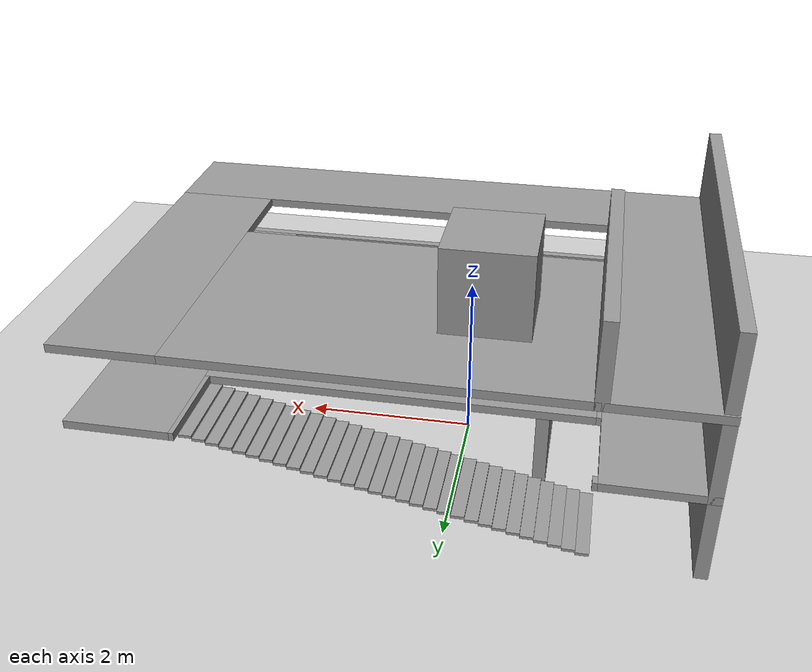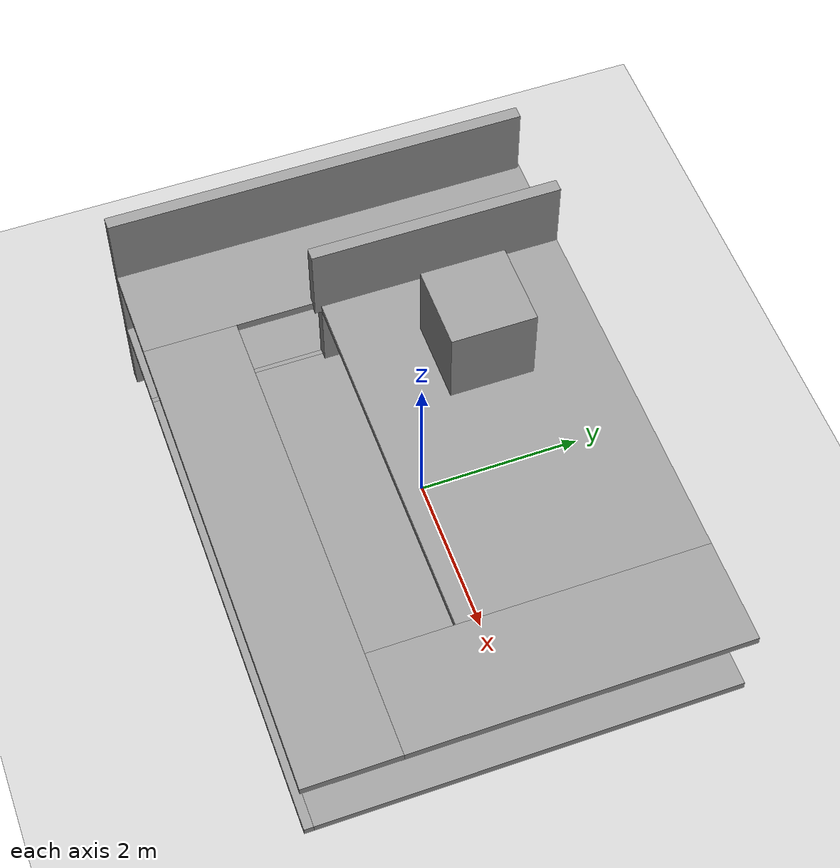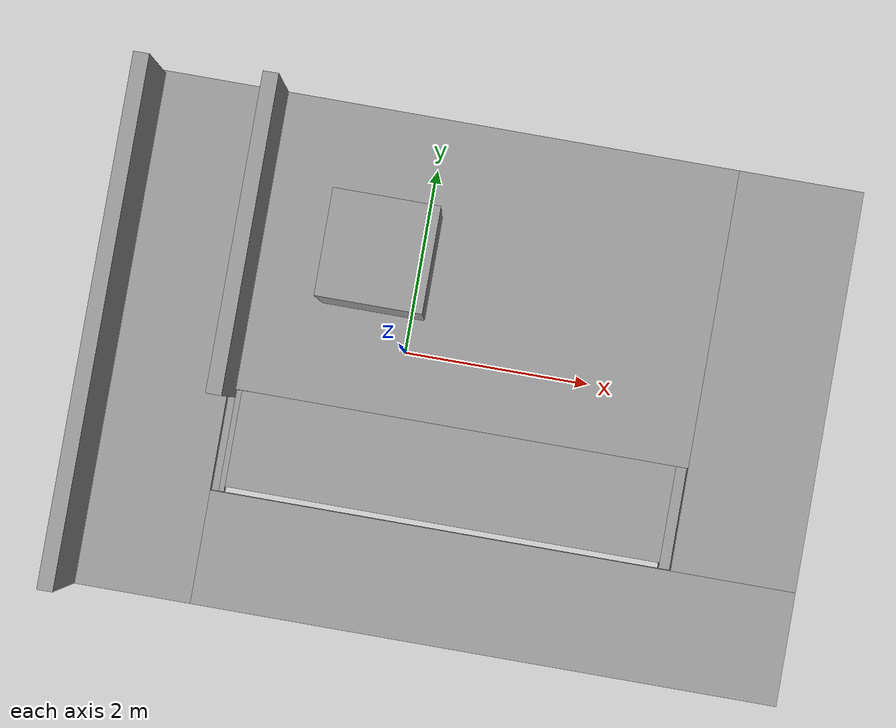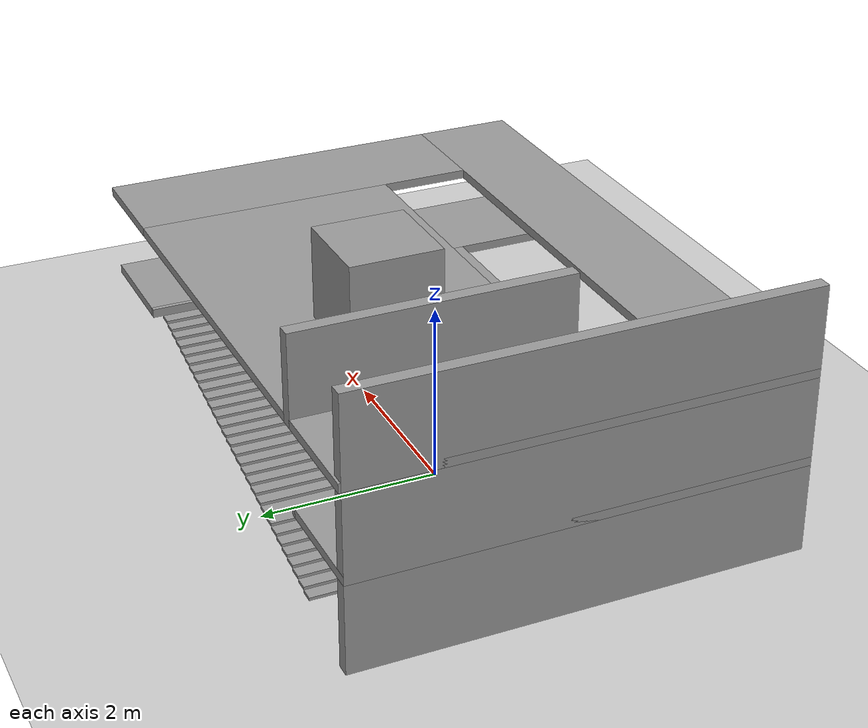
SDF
<sdf version="1.7">
 <world name="default">
  <model name="ground_plane">
   <static>1</static>
   <link name="link">
    <collision name="collision">
     <geometry><plane><normal>0 0 1</normal><size>100 100</size></plane></geometry>
     <surface>
      <contact><collide_bitmask>65535</collide_bitmask></contact>
      <friction><ode><mu>100</mu><mu2>50</mu2></ode></friction>
     </surface>
    </collision>
    <visual name="visual">
     <cast_shadows>0</cast_shadows>
     <geometry><plane><normal>0 0 1</normal><size>100 100</size></plane></geometry>
     <material>
      <script><uri>file://media/materials/scripts/gazebo.material</uri><name>Gazebo/Grey</name></script>
     </material>
    </visual>
   </link>
  </model>
  <model name="3F_building">
   <pose>0.674929 -0.295159 0 0 -0 0</pose>
   <link name="Floor_14">
    <pose>0 -0.0135 1 0 -0 0</pose>
    <visual name="Floor_14_Visual_0">
     <pose>-2.88538 0 0.05 0 -0 0</pose>
     <geometry><box><size>1.22924 5 0.1</size></box></geometry>
     <material>
      <script><uri>file://media/materials/scripts/gazebo.material</uri><name>Gazebo/Grey</name></script>
      <ambient>1 1 1 1</ambient>
     </material>
     <meta><layer>1</layer></meta>
    </visual>
    <collision name="Floor_14_Collision_0">
     <geometry><box><size>1.22924 5 0.1</size></box></geometry>
     <pose>-2.88538 0 0.05 0 -0 0</pose>
    </collision>
    <visual name="Floor_14_Visual_1">
     <pose>-2.24272 -0.5568 0.05 0 -0 0</pose>
     <geometry><box><size>0.056072 3.8864 0.1</size></box></geometry>
     <material>
      <script><uri>file://media/materials/scripts/gazebo.material</uri><name>Gazebo/Grey</name></script>
      <ambient>1 1 1 1</ambient>
     </material>
     <meta><layer>1</layer></meta>
    </visual>
    <collision name="Floor_14_Collision_1">
     <geometry><box><size>0.056072 3.8864 0.1</size></box></geometry>
     <pose>-2.24272 -0.5568 0.05 0 -0 0</pose>
    </collision>
    <visual name="Floor_14_Visual_2">
     <pose>0.642656 -2.44643 0.05 0 -0 0</pose>
     <geometry><box><size>5.71469 0.107138 0.1</size></box></geometry>
     <material>
      <script><uri>file://media/materials/scripts/gazebo.material</uri><name>Gazebo/Grey</name></script>
      <ambient>1 1 1 1</ambient>
     </material>
     <meta><layer>1</layer></meta>
    </visual>
    <collision name="Floor_14_Collision_2">
     <geometry><box><size>5.71469 0.107138 0.1</size></box></geometry>
     <pose>0.642656 -2.44643 0.05 0 -0 0</pose>
    </collision>
    <visual name="Floor_14_Visual_3">
     <pose>2.89266 0.053569 0.05 0 -0 0</pose>
     <geometry><box><size>1.21469 4.89286 0.1</size></box></geometry>
     <material>
      <script><uri>file://media/materials/scripts/gazebo.material</uri><name>Gazebo/Grey</name></script>
      <ambient>1 1 1 1</ambient>
     </material>
     <meta><layer>1</layer></meta>
    </visual>
    <collision name="Floor_14_Collision_3">
     <geometry><box><size>1.21469 4.89286 0.1</size></box></geometry>
     <pose>2.89266 0.053569 0.05 0 -0 0</pose>
    </collision>
    <visual name="Floor_14_Visual_4">
     <pose>0.035312 -0.00323 0.05 0 -0 0</pose>
     <geometry><box><size>4.5 2.77926 0.1</size></box></geometry>
     <material>
      <script><uri>file://media/materials/scripts/gazebo.material</uri><name>Gazebo/Grey</name></script>
      <ambient>1 1 1 1</ambient>
     </material>
     <meta><layer>1</layer></meta>
    </visual>
    <collision name="Floor_14_Collision_4">
     <geometry><box><size>4.5 2.77926 0.1</size></box></geometry>
     <pose>0.035312 -0.00323 0.05 0 -0 0</pose>
    </collision>
    <visual name="Floor_14_Visual_5">
     <pose>2.25728 1.9432 0.05 0 -0 0</pose>
     <geometry><box><size>0.056072 1.1136 0.1</size></box></geometry>
     <material>
      <script><uri>file://media/materials/scripts/gazebo.material</uri><name>Gazebo/Grey</name></script>
      <ambient>1 1 1 1</ambient>
     </material>
     <meta><layer>1</layer></meta>
    </visual>
    <collision name="Floor_14_Collision_5">
     <geometry><box><size>0.056072 1.1136 0.1</size></box></geometry>
     <pose>2.25728 1.9432 0.05 0 -0 0</pose>
    </collision>
    <visual name="Floor_14_Visual_6">
     <pose>-2.24272 2.4432 0.05 0 -0 0</pose>
     <geometry><box><size>0.056072 0.113599 0.1</size></box></geometry>
     <material>
      <script><uri>file://media/materials/scripts/gazebo.material</uri><name>Gazebo/Grey</name></script>
      <ambient>1 1 1 1</ambient>
     </material>
     <meta><layer>1</layer></meta>
    </visual>
    <collision name="Floor_14_Collision_6">
     <geometry><box><size>0.056072 0.113599 0.1</size></box></geometry>
     <pose>-2.24272 2.4432 0.05 0 -0 0</pose>
    </collision>
   </link>
   <link name="Floor_16">
    <pose>0 0 2 0 -0 0</pose>
    <visual name="Floor_16_Visual_0">
     <pose>-2.8604 0 0.05 0 -0 0</pose>
     <geometry><box><size>1.27921 5.027 0.1</size></box></geometry>
     <material>
      <script><uri>file://media/materials/scripts/gazebo.material</uri><name>Gazebo/Grey</name></script>
      <ambient>1 1 1 1</ambient>
     </material>
     <meta><layer>2</layer></meta>
    </visual>
    <collision name="Floor_16_Collision_0">
     <geometry><box><size>1.27921 5.027 0.1</size></box></geometry>
     <pose>-2.8604 0 0.05 0 -0 0</pose>
    </collision>
    <visual name="Floor_16_Visual_1">
     <pose>0.639605 -1.96001 0.05 0 -0 0</pose>
     <geometry><box><size>5.72079 1.10698 0.1</size></box></geometry>
     <material>
      <script><uri>file://media/materials/scripts/gazebo.material</uri><name>Gazebo/Grey</name></script>
      <ambient>1 1 1 1</ambient>
     </material>
     <meta><layer>2</layer></meta>
    </visual>
    <collision name="Floor_16_Collision_1">
     <geometry><box><size>5.72079 1.10698 0.1</size></box></geometry>
     <pose>0.639605 -1.96001 0.05 0 -0 0</pose>
    </collision>
    <visual name="Floor_16_Visual_2">
     <pose>2.8896 0.55349 0.05 0 -0 0</pose>
     <geometry><box><size>1.22079 3.92002 0.1</size></box></geometry>
     <material>
      <script><uri>file://media/materials/scripts/gazebo.material</uri><name>Gazebo/Grey</name></script>
      <ambient>1 1 1 1</ambient>
     </material>
     <meta><layer>2</layer></meta>
    </visual>
    <collision name="Floor_16_Collision_2">
     <geometry><box><size>1.22079 3.92002 0.1</size></box></geometry>
     <pose>2.8896 0.55349 0.05 0 -0 0</pose>
    </collision>
    <visual name="Floor_16_Visual_3">
     <pose>0.029209 1.05349 0.05 0 -0 0</pose>
     <geometry><box><size>4.5 2.92002 0.1</size></box></geometry>
     <material>
      <script><uri>file://media/materials/scripts/gazebo.material</uri><name>Gazebo/Grey</name></script>
      <ambient>1 1 1 1</ambient>
     </material>
     <meta><layer>2</layer></meta>
    </visual>
    <collision name="Floor_16_Collision_3">
     <geometry><box><size>4.5 2.92002 0.1</size></box></geometry>
     <pose>0.029209 1.05349 0.05 0 -0 0</pose>
    </collision>
   </link>
   <link name="Stairs_5">
    <visual name="Stairs_5_Visual_0">
     <pose>-2.19576 1.8729 0.016667 0 -0 1.5708</pose>
     <geometry><box><size>1 0.15 0.033333</size></box></geometry>
     <material>
      <script><uri>file://media/materials/scripts/gazebo.material</uri><name>Gazebo/Grey</name></script>
      <ambient>1 1 1 1</ambient>
     </material>
     <meta><layer>0</layer></meta>
    </visual>
    <collision name="Stairs_5_Collision_0">
     <geometry><box><size>1 0.15 0.033333</size></box></geometry>
     <pose>-2.19576 1.8729 0.016667 0 -0 1.5708</pose>
    </collision>
    <visual name="Stairs_5_Visual_1">
     <pose>-2.04576 1.8729 0.05 0 -0 1.5708</pose>
     <geometry><box><size>1 0.15 0.033333</size></box></geometry>
     <material>
      <script><uri>file://media/materials/scripts/gazebo.material</uri><name>Gazebo/Grey</name></script>
      <ambient>1 1 1 1</ambient>
     </material>
     <meta><layer>0</layer></meta>
    </visual>
    <collision name="Stairs_5_Collision_1">
     <geometry><box><size>1 0.15 0.033333</size></box></geometry>
     <pose>-2.04576 1.8729 0.05 0 -0 1.5708</pose>
    </collision>
    <visual name="Stairs_5_Visual_2">
     <pose>-1.89576 1.8729 0.083333 0 -0 1.5708</pose>
     <geometry><box><size>1 0.15 0.033333</size></box></geometry>
     <material>
      <script><uri>file://media/materials/scripts/gazebo.material</uri><name>Gazebo/Grey</name></script>
      <ambient>1 1 1 1</ambient>
     </material>
     <meta><layer>0</layer></meta>
    </visual>
    <collision name="Stairs_5_Collision_2">
     <geometry><box><size>1 0.15 0.033333</size></box></geometry>
     <pose>-1.89576 1.8729 0.083333 0 -0 1.5708</pose>
    </collision>
    <visual name="Stairs_5_Visual_3">
     <pose>-1.74576 1.8729 0.116667 0 -0 1.5708</pose>
     <geometry><box><size>1 0.15 0.033333</size></box></geometry>
     <material>
      <script><uri>file://media/materials/scripts/gazebo.material</uri><name>Gazebo/Grey</name></script>
      <ambient>1 1 1 1</ambient>
     </material>
     <meta><layer>0</layer></meta>
    </visual>
    <collision name="Stairs_5_Collision_3">
     <geometry><box><size>1 0.15 0.033333</size></box></geometry>
     <pose>-1.74576 1.8729 0.116667 0 -0 1.5708</pose>
    </collision>
    <visual name="Stairs_5_Visual_4">
     <pose>-1.59576 1.8729 0.15 0 -0 1.5708</pose>
     <geometry><box><size>1 0.15 0.033333</size></box></geometry>
     <material>
      <script><uri>file://media/materials/scripts/gazebo.material</uri><name>Gazebo/Grey</name></script>
      <ambient>1 1 1 1</ambient>
     </material>
     <meta><layer>0</layer></meta>
    </visual>
    <collision name="Stairs_5_Collision_4">
     <geometry><box><size>1 0.15 0.033333</size></box></geometry>
     <pose>-1.59576 1.8729 0.15 0 -0 1.5708</pose>
    </collision>
    <visual name="Stairs_5_Visual_5">
     <pose>-1.44576 1.8729 0.183333 0 -0 1.5708</pose>
     <geometry><box><size>1 0.15 0.033333</size></box></geometry>
     <material>
      <script><uri>file://media/materials/scripts/gazebo.material</uri><name>Gazebo/Grey</name></script>
      <ambient>1 1 1 1</ambient>
     </material>
     <meta><layer>0</layer></meta>
    </visual>
    <collision name="Stairs_5_Collision_5">
     <geometry><box><size>1 0.15 0.033333</size></box></geometry>
     <pose>-1.44576 1.8729 0.183333 0 -0 1.5708</pose>
    </collision>
    <visual name="Stairs_5_Visual_6">
     <pose>-1.29576 1.8729 0.216667 0 -0 1.5708</pose>
     <geometry><box><size>1 0.15 0.033333</size></box></geometry>
     <material>
      <script><uri>file://media/materials/scripts/gazebo.material</uri><name>Gazebo/Grey</name></script>
      <ambient>1 1 1 1</ambient>
     </material>
     <meta><layer>0</layer></meta>
    </visual>
    <collision name="Stairs_5_Collision_6">
     <geometry><box><size>1 0.15 0.033333</size></box></geometry>
     <pose>-1.29576 1.8729 0.216667 0 -0 1.5708</pose>
    </collision>
    <visual name="Stairs_5_Visual_7">
     <pose>-1.14576 1.8729 0.25 0 -0 1.5708</pose>
     <geometry><box><size>1 0.15 0.033333</size></box></geometry>
     <material>
      <script><uri>file://media/materials/scripts/gazebo.material</uri><name>Gazebo/Grey</name></script>
      <ambient>1 1 1 1</ambient>
     </material>
     <meta><layer>0</layer></meta>
    </visual>
    <collision name="Stairs_5_Collision_7">
     <geometry><box><size>1 0.15 0.033333</size></box></geometry>
     <pose>-1.14576 1.8729 0.25 0 -0 1.5708</pose>
    </collision>
    <visual name="Stairs_5_Visual_8">
     <pose>-0.99576 1.8729 0.283333 0 -0 1.5708</pose>
     <geometry><box><size>1 0.15 0.033333</size></box></geometry>
     <material>
      <script><uri>file://media/materials/scripts/gazebo.material</uri><name>Gazebo/Grey</name></script>
      <ambient>1 1 1 1</ambient>
     </material>
     <meta><layer>0</layer></meta>
    </visual>
    <collision name="Stairs_5_Collision_8">
     <geometry><box><size>1 0.15 0.033333</size></box></geometry>
     <pose>-0.99576 1.8729 0.283333 0 -0 1.5708</pose>
    </collision>
    <visual name="Stairs_5_Visual_9">
     <pose>-0.84576 1.8729 0.316667 0 -0 1.5708</pose>
     <geometry><box><size>1 0.15 0.033333</size></box></geometry>
     <material>
      <script><uri>file://media/materials/scripts/gazebo.material</uri><name>Gazebo/Grey</name></script>
      <ambient>1 1 1 1</ambient>
     </material>
     <meta><layer>0</layer></meta>
    </visual>
    <collision name="Stairs_5_Collision_9">
     <geometry><box><size>1 0.15 0.033333</size></box></geometry>
     <pose>-0.84576 1.8729 0.316667 0 -0 1.5708</pose>
    </collision>
    <visual name="Stairs_5_Visual_10">
     <pose>-0.69576 1.8729 0.35 0 -0 1.5708</pose>
     <geometry><box><size>1 0.15 0.033333</size></box></geometry>
     <material>
      <script><uri>file://media/materials/scripts/gazebo.material</uri><name>Gazebo/Grey</name></script>
      <ambient>1 1 1 1</ambient>
     </material>
     <meta><layer>0</layer></meta>
    </visual>
    <collision name="Stairs_5_Collision_10">
     <geometry><box><size>1 0.15 0.033333</size></box></geometry>
     <pose>-0.69576 1.8729 0.35 0 -0 1.5708</pose>
    </collision>
    <visual name="Stairs_5_Visual_11">
     <pose>-0.54576 1.8729 0.383333 0 -0 1.5708</pose>
     <geometry><box><size>1 0.15 0.033333</size></box></geometry>
     <material>
      <script><uri>file://media/materials/scripts/gazebo.material</uri><name>Gazebo/Grey</name></script>
      <ambient>1 1 1 1</ambient>
     </material>
     <meta><layer>0</layer></meta>
    </visual>
    <collision name="Stairs_5_Collision_11">
     <geometry><box><size>1 0.15 0.033333</size></box></geometry>
     <pose>-0.54576 1.8729 0.383333 0 -0 1.5708</pose>
    </collision>
    <visual name="Stairs_5_Visual_12">
     <pose>-0.39576 1.8729 0.416667 0 -0 1.5708</pose>
     <geometry><box><size>1 0.15 0.033333</size></box></geometry>
     <material>
      <script><uri>file://media/materials/scripts/gazebo.material</uri><name>Gazebo/Grey</name></script>
      <ambient>1 1 1 1</ambient>
     </material>
     <meta><layer>0</layer></meta>
    </visual>
    <collision name="Stairs_5_Collision_12">
     <geometry><box><size>1 0.15 0.033333</size></box></geometry>
     <pose>-0.39576 1.8729 0.416667 0 -0 1.5708</pose>
    </collision>
    <visual name="Stairs_5_Visual_13">
     <pose>-0.24576 1.8729 0.45 0 -0 1.5708</pose>
     <geometry><box><size>1 0.15 0.033333</size></box></geometry>
     <material>
      <script><uri>file://media/materials/scripts/gazebo.material</uri><name>Gazebo/Grey</name></script>
      <ambient>1 1 1 1</ambient>
     </material>
     <meta><layer>0</layer></meta>
    </visual>
    <collision name="Stairs_5_Collision_13">
     <geometry><box><size>1 0.15 0.033333</size></box></geometry>
     <pose>-0.24576 1.8729 0.45 0 -0 1.5708</pose>
    </collision>
    <visual name="Stairs_5_Visual_14">
     <pose>-0.09576 1.8729 0.483333 0 -0 1.5708</pose>
     <geometry><box><size>1 0.15 0.033333</size></box></geometry>
     <material>
      <script><uri>file://media/materials/scripts/gazebo.material</uri><name>Gazebo/Grey</name></script>
      <ambient>1 1 1 1</ambient>
     </material>
     <meta><layer>0</layer></meta>
    </visual>
    <collision name="Stairs_5_Collision_14">
     <geometry><box><size>1 0.15 0.033333</size></box></geometry>
     <pose>-0.09576 1.8729 0.483333 0 -0 1.5708</pose>
    </collision>
    <visual name="Stairs_5_Visual_15">
     <pose>0.05424 1.8729 0.516667 0 -0 1.5708</pose>
     <geometry><box><size>1 0.15 0.033333</size></box></geometry>
     <material>
      <script><uri>file://media/materials/scripts/gazebo.material</uri><name>Gazebo/Grey</name></script>
      <ambient>1 1 1 1</ambient>
     </material>
     <meta><layer>0</layer></meta>
    </visual>
    <collision name="Stairs_5_Collision_15">
     <geometry><box><size>1 0.15 0.033333</size></box></geometry>
     <pose>0.05424 1.8729 0.516667 0 -0 1.5708</pose>
    </collision>
    <visual name="Stairs_5_Visual_16">
     <pose>0.20424 1.8729 0.55 0 -0 1.5708</pose>
     <geometry><box><size>1 0.15 0.033333</size></box></geometry>
     <material>
      <script><uri>file://media/materials/scripts/gazebo.material</uri><name>Gazebo/Grey</name></script>
      <ambient>1 1 1 1</ambient>
     </material>
     <meta><layer>0</layer></meta>
    </visual>
    <collision name="Stairs_5_Collision_16">
     <geometry><box><size>1 0.15 0.033333</size></box></geometry>
     <pose>0.20424 1.8729 0.55 0 -0 1.5708</pose>
    </collision>
    <visual name="Stairs_5_Visual_17">
     <pose>0.35424 1.8729 0.583333 0 -0 1.5708</pose>
     <geometry><box><size>1 0.15 0.033333</size></box></geometry>
     <material>
      <script><uri>file://media/materials/scripts/gazebo.material</uri><name>Gazebo/Grey</name></script>
      <ambient>1 1 1 1</ambient>
     </material>
     <meta><layer>0</layer></meta>
    </visual>
    <collision name="Stairs_5_Collision_17">
     <geometry><box><size>1 0.15 0.033333</size></box></geometry>
     <pose>0.35424 1.8729 0.583333 0 -0 1.5708</pose>
    </collision>
    <visual name="Stairs_5_Visual_18">
     <pose>0.50424 1.8729 0.616667 0 -0 1.5708</pose>
     <geometry><box><size>1 0.15 0.033333</size></box></geometry>
     <material>
      <script><uri>file://media/materials/scripts/gazebo.material</uri><name>Gazebo/Grey</name></script>
      <ambient>1 1 1 1</ambient>
     </material>
     <meta><layer>0</layer></meta>
    </visual>
    <collision name="Stairs_5_Collision_18">
     <geometry><box><size>1 0.15 0.033333</size></box></geometry>
     <pose>0.50424 1.8729 0.616667 0 -0 1.5708</pose>
    </collision>
    <visual name="Stairs_5_Visual_19">
     <pose>0.65424 1.8729 0.65 0 -0 1.5708</pose>
     <geometry><box><size>1 0.15 0.033333</size></box></geometry>
     <material>
      <script><uri>file://media/materials/scripts/gazebo.material</uri><name>Gazebo/Grey</name></script>
      <ambient>1 1 1 1</ambient>
     </material>
     <meta><layer>0</layer></meta>
    </visual>
    <collision name="Stairs_5_Collision_19">
     <geometry><box><size>1 0.15 0.033333</size></box></geometry>
     <pose>0.65424 1.8729 0.65 0 -0 1.5708</pose>
    </collision>
    <visual name="Stairs_5_Visual_20">
     <pose>0.80424 1.8729 0.683333 0 -0 1.5708</pose>
     <geometry><box><size>1 0.15 0.033333</size></box></geometry>
     <material>
      <script><uri>file://media/materials/scripts/gazebo.material</uri><name>Gazebo/Grey</name></script>
      <ambient>1 1 1 1</ambient>
     </material>
     <meta><layer>0</layer></meta>
    </visual>
    <collision name="Stairs_5_Collision_20">
     <geometry><box><size>1 0.15 0.033333</size></box></geometry>
     <pose>0.80424 1.8729 0.683333 0 -0 1.5708</pose>
    </collision>
    <visual name="Stairs_5_Visual_21">
     <pose>0.95424 1.8729 0.716667 0 -0 1.5708</pose>
     <geometry><box><size>1 0.15 0.033333</size></box></geometry>
     <material>
      <script><uri>file://media/materials/scripts/gazebo.material</uri><name>Gazebo/Grey</name></script>
      <ambient>1 1 1 1</ambient>
     </material>
     <meta><layer>0</layer></meta>
    </visual>
    <collision name="Stairs_5_Collision_21">
     <geometry><box><size>1 0.15 0.033333</size></box></geometry>
     <pose>0.95424 1.8729 0.716667 0 -0 1.5708</pose>
    </collision>
    <visual name="Stairs_5_Visual_22">
     <pose>1.10424 1.8729 0.75 0 -0 1.5708</pose>
     <geometry><box><size>1 0.15 0.033333</size></box></geometry>
     <material>
      <script><uri>file://media/materials/scripts/gazebo.material</uri><name>Gazebo/Grey</name></script>
      <ambient>1 1 1 1</ambient>
     </material>
     <meta><layer>0</layer></meta>
    </visual>
    <collision name="Stairs_5_Collision_22">
     <geometry><box><size>1 0.15 0.033333</size></box></geometry>
     <pose>1.10424 1.8729 0.75 0 -0 1.5708</pose>
    </collision>
    <visual name="Stairs_5_Visual_23">
     <pose>1.25424 1.8729 0.783333 0 -0 1.5708</pose>
     <geometry><box><size>1 0.15 0.033333</size></box></geometry>
     <material>
      <script><uri>file://media/materials/scripts/gazebo.material</uri><name>Gazebo/Grey</name></script>
      <ambient>1 1 1 1</ambient>
     </material>
     <meta><layer>0</layer></meta>
    </visual>
    <collision name="Stairs_5_Collision_23">
     <geometry><box><size>1 0.15 0.033333</size></box></geometry>
     <pose>1.25424 1.8729 0.783333 0 -0 1.5708</pose>
    </collision>
    <visual name="Stairs_5_Visual_24">
     <pose>1.40424 1.8729 0.816667 0 -0 1.5708</pose>
     <geometry><box><size>1 0.15 0.033333</size></box></geometry>
     <material>
      <script><uri>file://media/materials/scripts/gazebo.material</uri><name>Gazebo/Grey</name></script>
      <ambient>1 1 1 1</ambient>
     </material>
     <meta><layer>0</layer></meta>
    </visual>
    <collision name="Stairs_5_Collision_24">
     <geometry><box><size>1 0.15 0.033333</size></box></geometry>
     <pose>1.40424 1.8729 0.816667 0 -0 1.5708</pose>
    </collision>
    <visual name="Stairs_5_Visual_25">
     <pose>1.55424 1.8729 0.85 0 -0 1.5708</pose>
     <geometry><box><size>1 0.15 0.033333</size></box></geometry>
     <material>
      <script><uri>file://media/materials/scripts/gazebo.material</uri><name>Gazebo/Grey</name></script>
      <ambient>1 1 1 1</ambient>
     </material>
     <meta><layer>0</layer></meta>
    </visual>
    <collision name="Stairs_5_Collision_25">
     <geometry><box><size>1 0.15 0.033333</size></box></geometry>
     <pose>1.55424 1.8729 0.85 0 -0 1.5708</pose>
    </collision>
    <visual name="Stairs_5_Visual_26">
     <pose>1.70424 1.8729 0.883333 0 -0 1.5708</pose>
     <geometry><box><size>1 0.15 0.033333</size></box></geometry>
     <material>
      <script><uri>file://media/materials/scripts/gazebo.material</uri><name>Gazebo/Grey</name></script>
      <ambient>1 1 1 1</ambient>
     </material>
     <meta><layer>0</layer></meta>
    </visual>
    <collision name="Stairs_5_Collision_26">
     <geometry><box><size>1 0.15 0.033333</size></box></geometry>
     <pose>1.70424 1.8729 0.883333 0 -0 1.5708</pose>
    </collision>
    <visual name="Stairs_5_Visual_27">
     <pose>1.85424 1.8729 0.916667 0 -0 1.5708</pose>
     <geometry><box><size>1 0.15 0.033333</size></box></geometry>
     <material>
      <script><uri>file://media/materials/scripts/gazebo.material</uri><name>Gazebo/Grey</name></script>
      <ambient>1 1 1 1</ambient>
     </material>
     <meta><layer>0</layer></meta>
    </visual>
    <collision name="Stairs_5_Collision_27">
     <geometry><box><size>1 0.15 0.033333</size></box></geometry>
     <pose>1.85424 1.8729 0.916667 0 -0 1.5708</pose>
    </collision>
    <visual name="Stairs_5_Visual_28">
     <pose>2.00424 1.8729 0.95 0 -0 1.5708</pose>
     <geometry><box><size>1 0.15 0.033333</size></box></geometry>
     <material>
      <script><uri>file://media/materials/scripts/gazebo.material</uri><name>Gazebo/Grey</name></script>
      <ambient>1 1 1 1</ambient>
     </material>
     <meta><layer>0</layer></meta>
    </visual>
    <collision name="Stairs_5_Collision_28">
     <geometry><box><size>1 0.15 0.033333</size></box></geometry>
     <pose>2.00424 1.8729 0.95 0 -0 1.5708</pose>
    </collision>
    <visual name="Stairs_5_Visual_29">
     <pose>2.15424 1.8729 0.983333 0 -0 1.5708</pose>
     <geometry><box><size>1 0.15 0.033333</size></box></geometry>
     <material>
      <script><uri>file://media/materials/scripts/gazebo.material</uri><name>Gazebo/Grey</name></script>
      <ambient>1 1 1 1</ambient>
     </material>
     <meta><layer>0</layer></meta>
    </visual>
    <collision name="Stairs_5_Collision_29">
     <geometry><box><size>1 0.15 0.033333</size></box></geometry>
     <pose>2.15424 1.8729 0.983333 0 -0 1.5708</pose>
    </collision>
   </link>
   <link name="Wall_103">
    <collision name="Wall_103_Collision">
     <geometry><box><size>3 0.15 1</size></box></geometry>
     <pose>0 0 0.5 0 -0 0</pose>
    </collision>
    <visual name="Wall_103_Visual">
     <pose>0 0 0.5 0 -0 0</pose>
     <geometry><box><size>3 0.15 1</size></box></geometry>
     <material>
      <script><uri>file://media/materials/scripts/gazebo.material</uri><name>Gazebo/Grey</name></script>
      <ambient>1 1 1 1</ambient>
     </material>
     <meta><layer>2</layer></meta>
    </visual>
    <pose>-2.224 1.0135 2 0 -0 1.5708</pose>
   </link>
   <link name="Wall_14">
    <collision name="Wall_14_Collision">
     <geometry><box><size>5 0.15 1</size></box></geometry>
     <pose>0 0 0.5 0 -0 0</pose>
    </collision>
    <visual name="Wall_14_Visual">
     <pose>0 0 0.5 0 -0 0</pose>
     <geometry><box><size>5 0.15 1</size></box></geometry>
     <material>
      <script><uri>file://media/materials/scripts/gazebo.material</uri><name>Gazebo/Grey</name></script>
      <ambient>1 1 1 1</ambient>
     </material>
     <meta><layer>0</layer></meta>
    </visual>
    <pose>-3.425 -0.0135 0 0 -0 1.5708</pose>
   </link>
   <link name="Wall_44">
    <collision name="Wall_44_Collision">
     <geometry><box><size>5.75 0.15 1</size></box></geometry>
     <pose>0 0 0.5 0 -0 0</pose>
    </collision>
    <visual name="Wall_44_Visual">
     <pose>0 0 0.5 0 -0 0</pose>
     <geometry><box><size>5.75 0.15 1</size></box></geometry>
     <material>
      <script><uri>file://media/materials/scripts/gazebo.material</uri><name>Gazebo/Grey</name></script>
      <ambient>1 1 1 1</ambient>
     </material>
     <meta><layer>0</layer></meta>
    </visual>
    <pose>-0.582 -1.3275 0 0 -0 0</pose>
   </link>
   <link name="Wall_46">
    <collision name="Wall_46_Collision">
     <geometry><box><size>1.794 0.15 1</size></box></geometry>
     <pose>0 0 0.5 0 -0 0</pose>
    </collision>
    <visual name="Wall_46_Visual">
     <pose>0 0 0.5 0 -0 0</pose>
     <geometry><box><size>1.794 0.15 1</size></box></geometry>
     <material>
      <script><uri>file://media/materials/scripts/gazebo.material</uri><name>Gazebo/Grey</name></script>
      <ambient>1 1 1 1</ambient>
     </material>
     <meta><layer>0</layer></meta>
    </visual>
    <pose>-1.636 0.4395 0 0 -0 -1.5708</pose>
   </link>
   <link name="Wall_47">
    <collision name="Wall_47_Collision">
     <geometry><box><size>2 0.15 1</size></box></geometry>
     <pose>0 0 0.5 0 -0 0</pose>
    </collision>
    <visual name="Wall_47_Visual">
     <pose>0 0 0.5 0 -0 0</pose>
     <geometry><box><size>2 0.15 1</size></box></geometry>
     <material>
      <script><uri>file://media/materials/scripts/gazebo.material</uri><name>Gazebo/Grey</name></script>
      <ambient>1 1 1 1</ambient>
     </material>
     <meta><layer>0</layer></meta>
    </visual>
    <pose>-0.711 -0.3825 0 0 -0 0</pose>
   </link>
   <link name="Wall_72">
    <collision name="Wall_72_Collision">
     <geometry><box><size>5 0.15 1</size></box></geometry>
     <pose>0 0 0.5 0 -0 0</pose>
    </collision>
    <visual name="Wall_72_Visual">
     <pose>0 0 0.5 0 -0 0</pose>
     <geometry><box><size>5 0.15 1</size></box></geometry>
     <material>
      <script><uri>file://media/materials/scripts/gazebo.material</uri><name>Gazebo/Grey</name></script>
      <ambient>1 1 1 1</ambient>
     </material>
     <meta><layer>1</layer></meta>
    </visual>
    <pose>-3.425 -0.0135 1 0 -0 1.5708</pose>
   </link>
   <link name="Wall_90">
    <collision name="Wall_90_Collision">
     <geometry><box><size>0.75 0.15 1</size></box></geometry>
     <pose>0 0 0.5 0 -0 0</pose>
    </collision>
    <visual name="Wall_90_Visual">
     <pose>0 0 0.5 0 -0 0</pose>
     <geometry><box><size>0.75 0.15 1</size></box></geometry>
     <material>
      <script><uri>file://media/materials/scripts/gazebo.material</uri><name>Gazebo/Grey</name></script>
      <ambient>1 1 1 1</ambient>
     </material>
     <meta><layer>1</layer></meta>
    </visual>
    <pose>-2.211 -0.0345 1 0 -0 1.5708</pose>
   </link>
   <link name="Wall_92">
    <collision name="Wall_92_Collision">
     <geometry><box><size>5 0.15 1</size></box></geometry>
     <pose>0 0 0.5 0 -0 0</pose>
    </collision>
    <visual name="Wall_92_Visual">
     <pose>0 0 0.5 0 -0 0</pose>
     <geometry><box><size>5 0.15 1</size></box></geometry>
     <material>
      <script><uri>file://media/materials/scripts/gazebo.material</uri><name>Gazebo/Grey</name></script>
      <ambient>1 1 1 1</ambient>
     </material>
     <meta><layer>2</layer></meta>
    </visual>
    <pose>-3.425 -0.0135 2 0 -0 1.5708</pose>
   </link>
   <static>1</static>
  </model>
  <model name="unit_box_clone">
   <pose>-0.29525 0.762458 2.6 -0 -0 -0</pose>
   <link name="link">
    <inertial>
     <mass>1</mass>
     <inertia>
      <ixx>0.166667</ixx>
      <ixy>0</ixy>
      <ixz>0</ixz>
      <iyy>0.166667</iyy>
      <iyz>0</iyz>
      <izz>0.166667</izz>
     </inertia>
    </inertial>
    <collision name="collision"><geometry><box><size>1 1 1</size></box></geometry></collision>
    <visual name="visual">
     <geometry><box><size>1 1 1</size></box></geometry>
     <material>
      <script><name>Gazebo/Grey</name><uri>file://media/materials/scripts/gazebo.material</uri></script>
     </material>
    </visual>
   </link>
  </model>
 </world>
</sdf>
